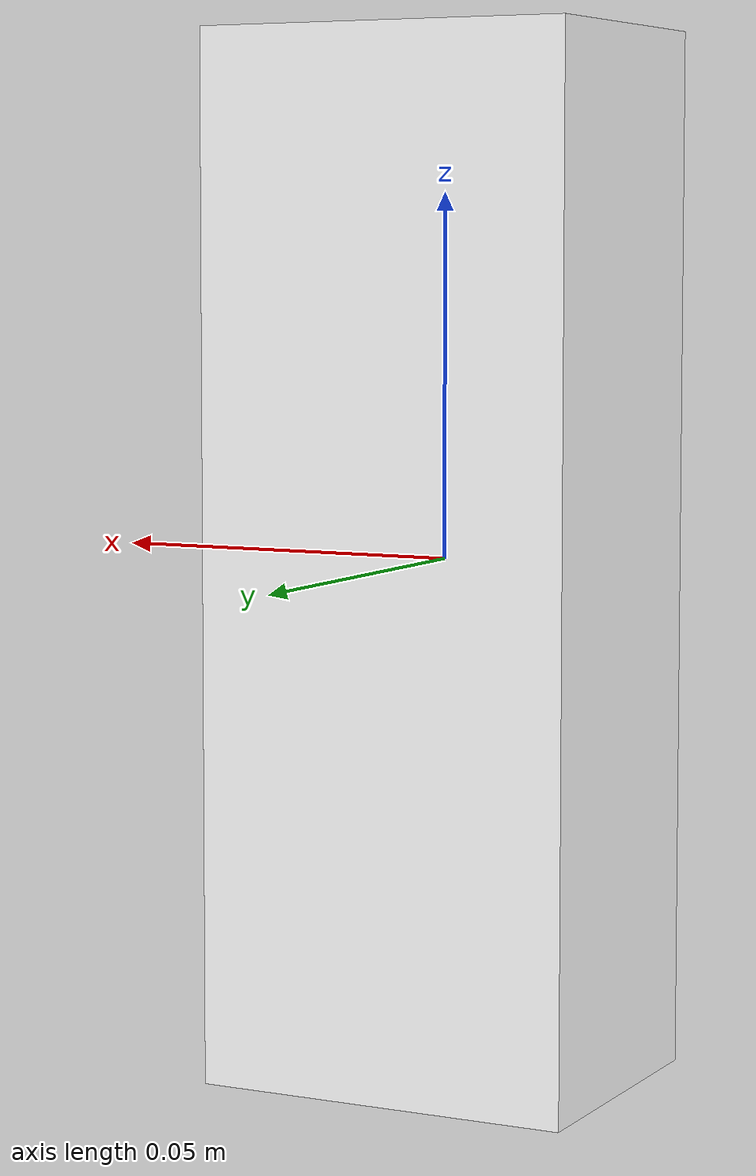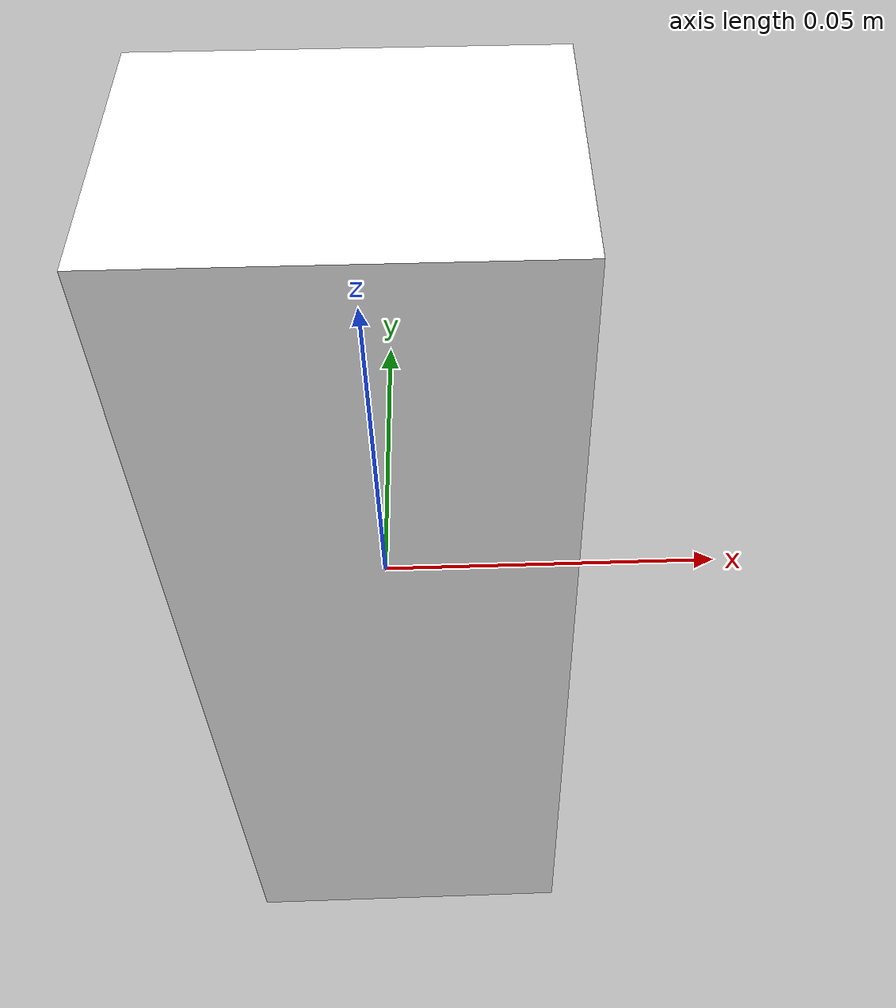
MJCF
<mujoco>
  <worldbody>
    <body>
      <freejoint />
      <inertial pos="0 0 0" mass="0.01" fullinertia="0.000784 0.000823 0.000157 0.000000 0.000000 0.000000" />
      <geom type="box" size="0.026531 0.020535 0.072022" rgba="1.000000 1.000000 1.000000 1.000000" condim="4" solimp="0.99 0.99 0" solref="0.01 1" />
    </body>
  </worldbody>
</mujoco>
